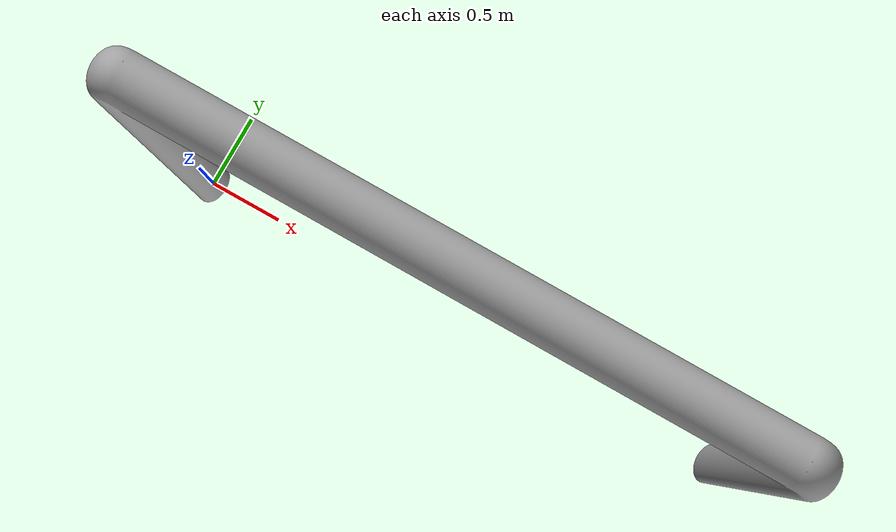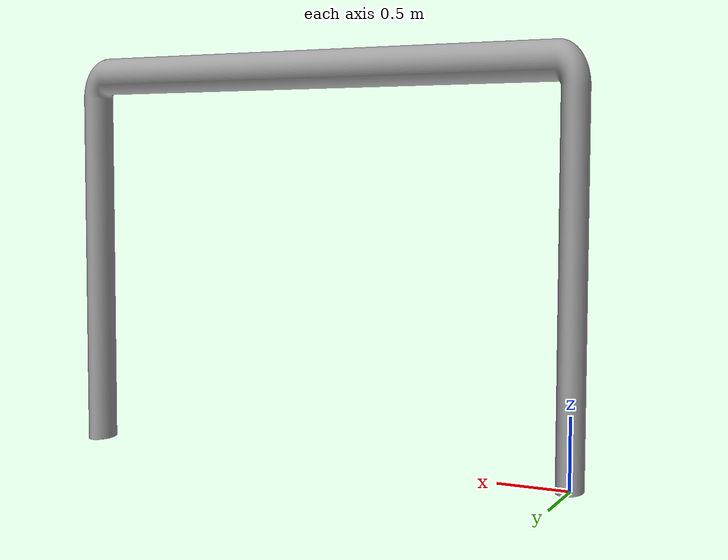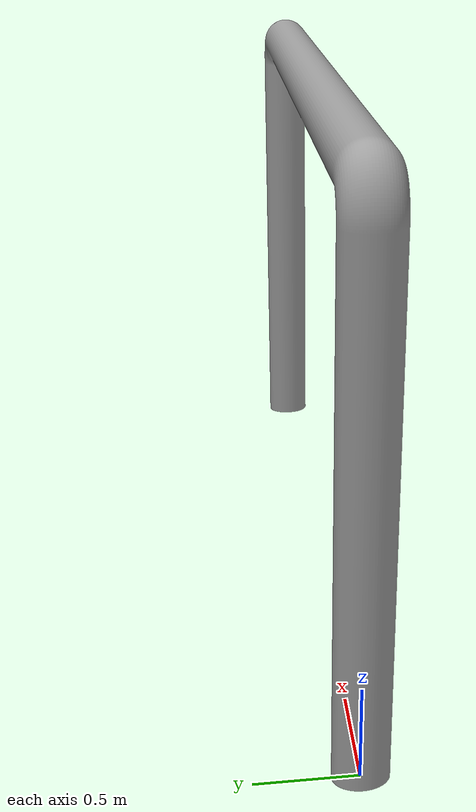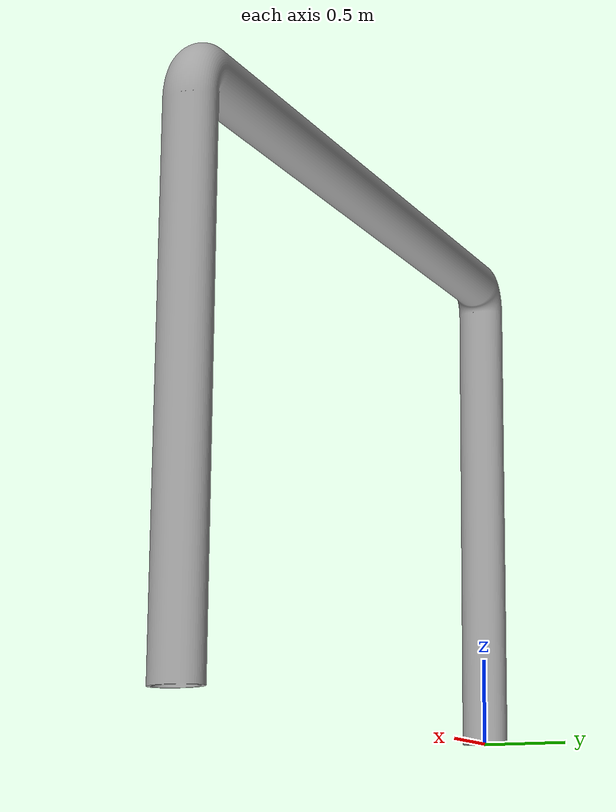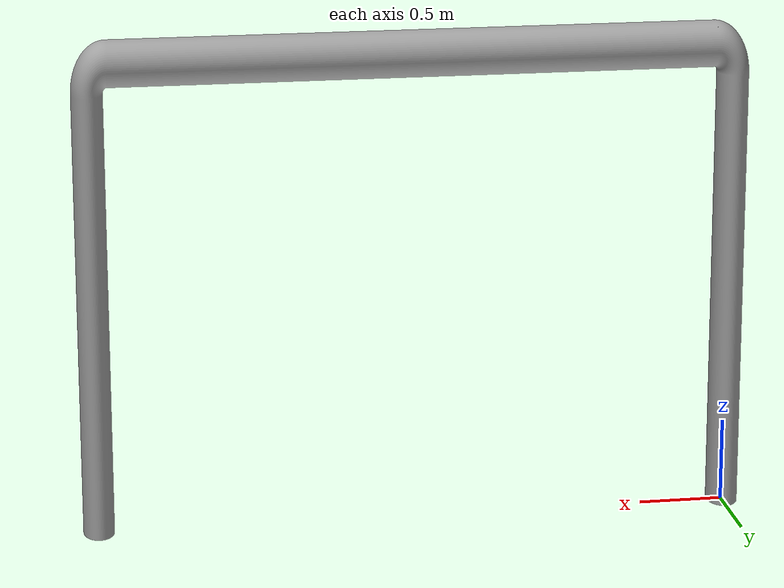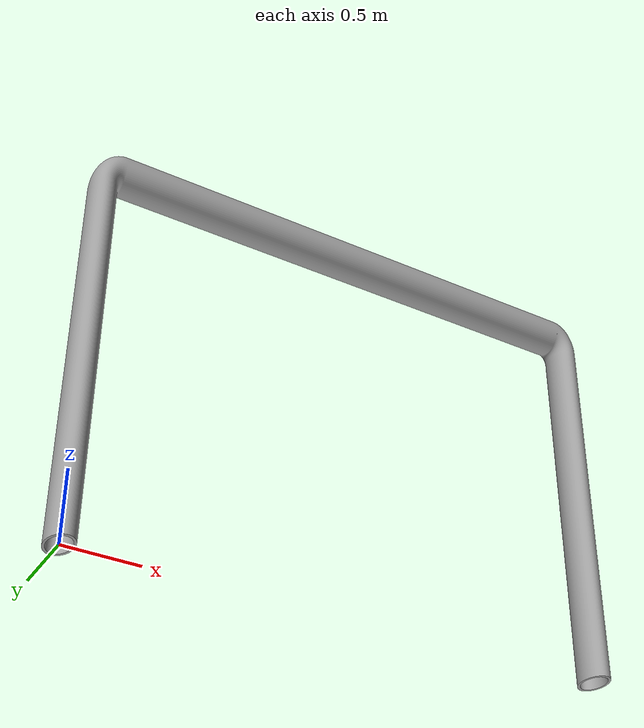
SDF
<?xml version="1.0"?>
<sdf version="1.6">
  <model name="pipe7">
    <link name="link">
      <collision name="collision">
        <geometry>
          <mesh>
            <uri>model://pipe7/meshes/pipe7.dae</uri>
          </mesh>
        </geometry>
      </collision>
      <visual name="visual">
        <geometry>
          <mesh>
            <uri>model://pipe7/meshes/pipe7.dae</uri>
          </mesh>
        </geometry>
      </visual>
    </link>
  </model>
</sdf>
